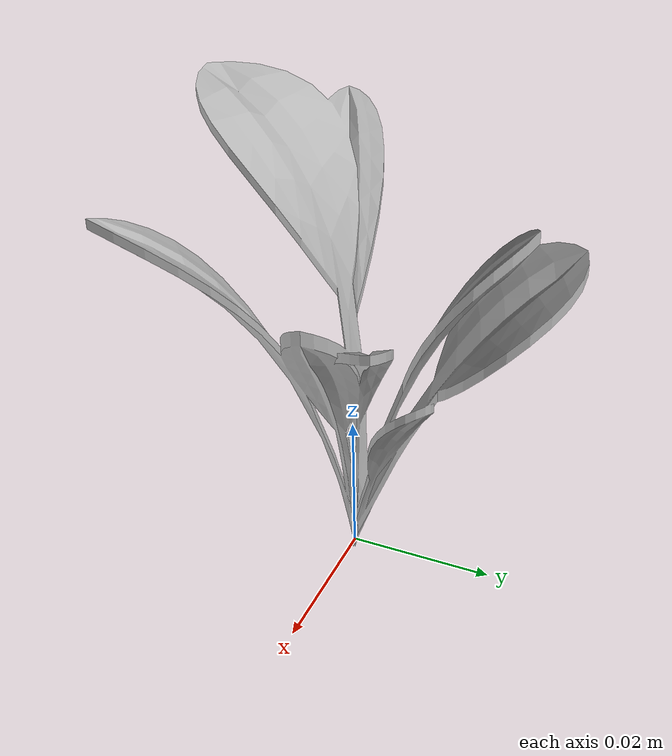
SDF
<sdf version="1.6">
  <model name="sugar_beet_51">
    <static>true</static>
    <link name="body">
      <visual name="visual">
        <geometry>
          <mesh>
            <uri>file:///sugar_beet_51/media/sugar_beet.dae</uri>
          </mesh>
        </geometry>
      </visual>
    </link>
  </model>
</sdf>
